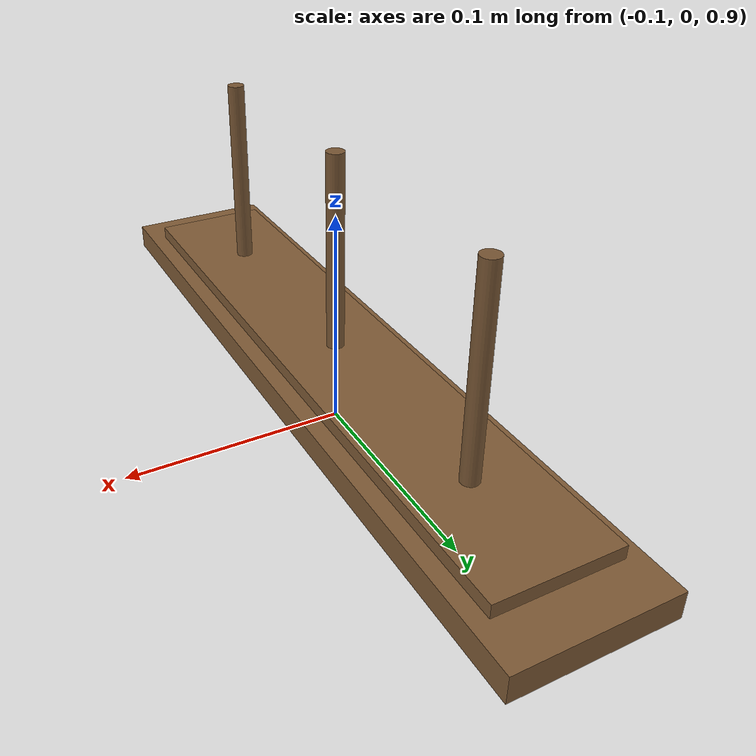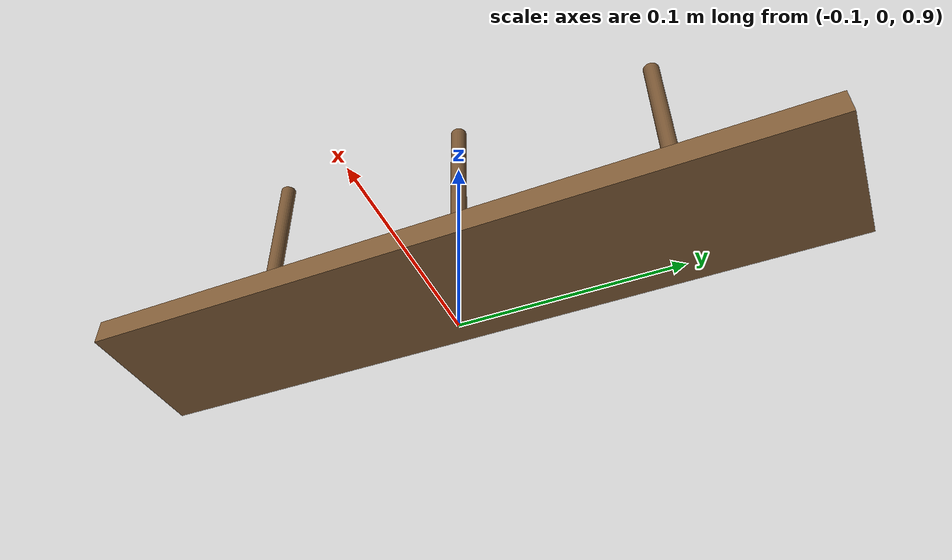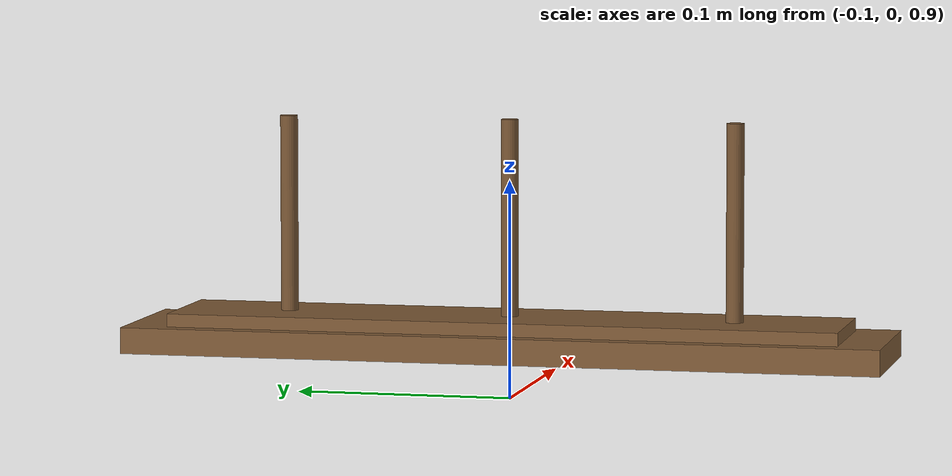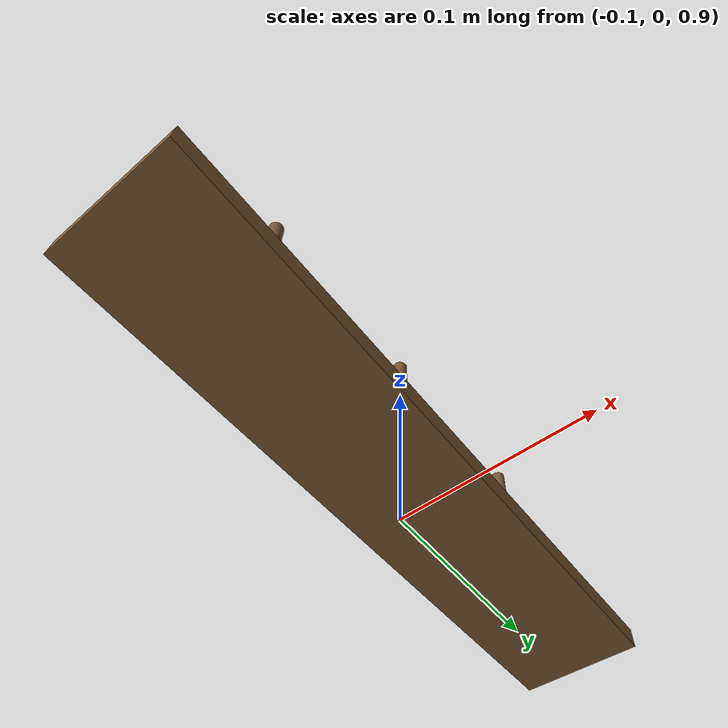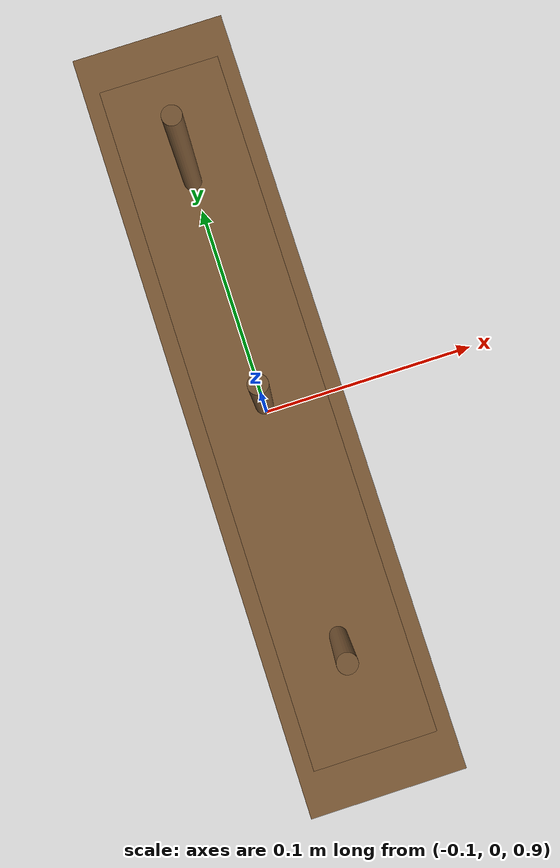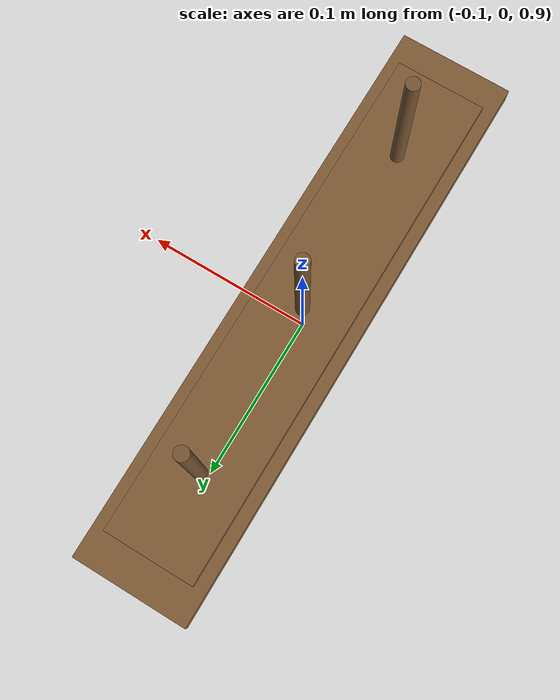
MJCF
<mujoco model="hanoi_base">
  <asset>
    <texture file="./table_arena/textures/light-wood.png"
             type="2d"
             name="hanoi_wood_tex" />

    <material name="hanoi_base_lower_mat"
              texture="hanoi_wood_tex"
              texrepeat="1 1"
              texuniform="true"
              rgba="0.72 0.72 0.72 1"
              specular="0.0"
              shininess="0.0"
              reflectance="0.0" />

    <material name="hanoi_base_upper_mat"
              texture="hanoi_wood_tex"
              texrepeat="1 1"
              texuniform="true"
              rgba="0.72 0.72 0.72 1"
              specular="0.0"
              shininess="0.0"
              reflectance="0.0" />

    <material name="hanoi_post_mat"
              texture="hanoi_wood_tex"
              texrepeat="1 3"
              texuniform="true"
              rgba="0.68 0.68 0.68 1"
              specular="0.0"
              shininess="0.0"
              reflectance="0.0" />
  </asset>

  <worldbody>
    <body name="hanoi_base" pos="-0.10 0 0.92">

      <!-- ================= Base ================= -->

      <geom name="hanoi_base_lower_visual"
            type="box"
            pos="0 0 0.006"
            size="0.035 0.175 0.006"
            material="hanoi_base_lower_mat"
            contype="0" conaffinity="0"
            density="0"
            group="1"/>

      <geom name="hanoi_base_lower_collision"
            type="box"
            pos="0 0 0.006"
            size="0.035 0.175 0.006"
            friction="1.0 0.02 0.002"
            density="900"
            group="3"/>

      <geom name="hanoi_base_upper_visual"
            type="box"
            pos="0 0 0.015"
            size="0.0275 0.155 0.003"
            material="hanoi_base_upper_mat"
            contype="0" conaffinity="0"
            density="0"
            group="1"/>

      <geom name="hanoi_base_upper_collision"
            type="box"
            pos="0 0 0.015"
            size="0.0275 0.155 0.003"
            friction="1.0 0.02 0.002"
            density="900"
            group="3"/>

      <!-- ================= Posts ================= -->

      <!-- Post A -->
      <geom name="hanoi_post_a_visual"
            type="cylinder"
            pos="0 0.104 0.063"
            size="0.004 0.045"
            material="hanoi_post_mat"
            contype="0" conaffinity="0"
            density="0"
            group="1"/>

      <geom name="hanoi_post_a_collision"
            type="cylinder"
            pos="0 0.104 0.063"
            size="0.004 0.045"
            friction="0.05 0.002 0.0002"
            density="1200"
            group="3"/>

      <!-- Post B -->
      <geom name="hanoi_post_b_visual"
            type="cylinder"
            pos="0 0 0.063"
            size="0.004 0.045"
            material="hanoi_post_mat"
            contype="0" conaffinity="0"
            density="0"
            group="1"/>

      <geom name="hanoi_post_b_collision"
            type="cylinder"
            pos="0 0 0.063"
            size="0.004 0.045"
            friction="0.05 0.002 0.0002"
            density="1200"
            group="3"/>

      <!-- Post C -->
      <geom name="hanoi_post_c_visual"
            type="cylinder"
            pos="0 -0.104 0.063"
            size="0.004 0.045"
            material="hanoi_post_mat"
            contype="0" conaffinity="0"
            density="0"
            group="1"/>

      <geom name="hanoi_post_c_collision"
            type="cylinder"
            pos="0 -0.104 0.063"
            size="0.004 0.045"
            friction="0.05 0.002 0.0002"
            density="1200"
            group="3"/>

      <!-- ================= Sites ================= -->

      <site name="hanoi_post_a_site"
            pos="0 0.104 0.108"
            size="0.002"
            rgba="0 0 1 0"/>

      <site name="hanoi_post_b_site"
            pos="0 0 0.108"
            size="0.002"
            rgba="0 1 0 0"/>

      <site name="hanoi_post_c_site"
            pos="0 -0.104 0.108"
            size="0.002"
            rgba="1 0 0 0"/>

    </body>
  </worldbody>
</mujoco>
